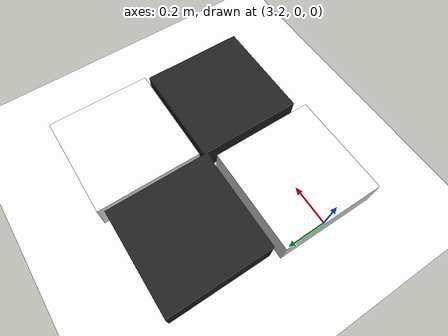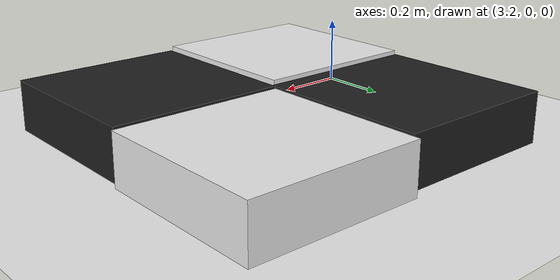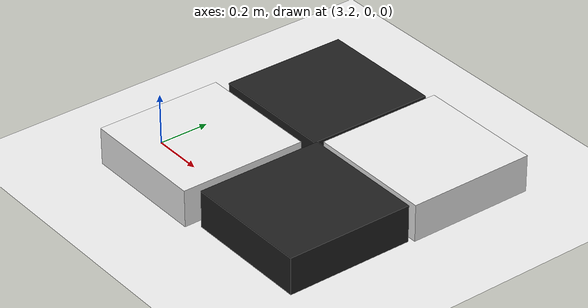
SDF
<sdf version="1.6">
 <world name="default">
  <light name="sun" type="directional">
   <pose>0 0 10 0 -0 0</pose>
   <diffuse>0.8 0.8 0.8 1</diffuse>
   <specular>0.1 0.1 0.1 1</specular>
   <attenuation>
    <range>1000</range>
    <constant>0.9</constant>
    <linear>0.01</linear>
    <quadratic>0.001</quadratic>
   </attenuation>
   <direction>-0.5 0.5 -1</direction>
  </light>
  <model name="ground_plane">
   <static>1</static>
   <link name="link">
    <collision name="collision">
     <geometry><plane><normal>0 0 1</normal><size>100 100</size></plane></geometry>
     <surface><friction><ode><mu>100</mu><mu2>50</mu2></ode></friction></surface>
    </collision>
    <visual name="visual">
     <cast_shadows>0</cast_shadows>
     <geometry><plane><normal>0 0 1</normal><size>100 100</size></plane></geometry>
     <material>
      <script><uri>file://media/materials/scripts/gazebo.material</uri><name>Gazebo/white</name></script>
     </material>
    </visual>
   </link>
  </model>
  <gravity>0 0 -9.8</gravity>
  <magnetic_field>6e-06 2.3e-05 -4.2e-05</magnetic_field>
  <atmosphere type="adiabatic"/>
  <physics name="default_physics" default="0" type="ode">
   <max_step_size>0.001</max_step_size>
   <real_time_factor>1</real_time_factor>
   <real_time_update_rate>1000</real_time_update_rate>
  </physics>
  <scene><ambient>0.4 0.4 0.4 1</ambient><background>0.7 0.7 0.7 1</background><shadows>1</shadows></scene>
  <spherical_coordinates>
   <surface_model>EARTH_WGS84</surface_model>
   <latitude_deg>0</latitude_deg>
   <longitude_deg>0</longitude_deg>
   <elevation>0</elevation>
   <heading_deg>0</heading_deg>
  </spherical_coordinates>
  <model name="unit_box_0">
   <pose>3.46565 0.541009 0.073426 0 0 -0.00434</pose>
   <link name="link">
    <inertial>
     <mass>1</mass>
     <inertia>
      <ixx>0.166667</ixx>
      <ixy>0</ixy>
      <ixz>0</ixz>
      <iyy>0.166667</iyy>
      <iyz>0</iyz>
      <izz>0.166667</izz>
     </inertia>
    </inertial>
    <collision name="collision"><geometry><box><size>0.5 0.5 0.146852</size></box></geometry></collision>
    <visual name="visual">
     <geometry><box><size>0.5 0.5 0.146852</size></box></geometry>
     <material>
      <script><name>Gazebo/Black</name><uri>file://media/materials/scripts/gazebo.material</uri></script>
     </material>
    </visual>
   </link>
  </model>
  <model name="unit_box_0_clone">
   <pose>3.9635 0.04945 0.073426 0 0 -0.004541</pose>
   <link name="link">
    <inertial>
     <mass>1</mass>
     <inertia>
      <ixx>0.166667</ixx>
      <ixy>0</ixy>
      <ixz>0</ixz>
      <iyy>0.166667</iyy>
      <iyz>0</iyz>
      <izz>0.166667</izz>
     </inertia>
    </inertial>
    <collision name="collision"><geometry><box><size>0.5 0.5 0.146852</size></box></geometry></collision>
    <visual name="visual">
     <geometry><box><size>0.5 0.5 0.146852</size></box></geometry>
     <material>
      <script><name>Gazebo/Black</name><uri>file://media/materials/scripts/gazebo.material</uri></script>
     </material>
    </visual>
   </link>
  </model>
  <model name="unit_box_0_clone_clone">
   <pose>3.97934 0.567152 0.073426 0 0 -0.004541</pose>
   <link name="link">
    <inertial>
     <mass>1</mass>
     <inertia>
      <ixx>0.166667</ixx>
      <ixy>0</ixy>
      <ixz>0</ixz>
      <iyy>0.166667</iyy>
      <iyz>0</iyz>
      <izz>0.166667</izz>
     </inertia>
    </inertial>
    <collision name="collision"><geometry><box><size>0.5 0.5 0.146852</size></box></geometry></collision>
    <visual name="visual">
     <geometry><box><size>0.5 0.5 0.146852</size></box></geometry>
     <material>
      <script><name>Gazebo/White</name><uri>file://media/materials/scripts/gazebo.material</uri></script>
     </material>
    </visual>
   </link>
  </model>
  <model name="unit_box_0_clone_clone_clone">
   <pose>3.42921 0.008109 0.073423 -1.2e-05 -0 -0.004541</pose>
   <link name="link">
    <inertial>
     <mass>1</mass>
     <inertia>
      <ixx>0.166667</ixx>
      <ixy>0</ixy>
      <ixz>0</ixz>
      <iyy>0.166667</iyy>
      <iyz>0</iyz>
      <izz>0.166667</izz>
     </inertia>
    </inertial>
    <collision name="collision"><geometry><box><size>0.5 0.5 0.146852</size></box></geometry></collision>
    <visual name="visual">
     <geometry><box><size>0.5 0.5 0.146852</size></box></geometry>
     <material>
      <script><name>Gazebo/White</name><uri>file://media/materials/scripts/gazebo.material</uri></script>
     </material>
    </visual>
   </link>
  </model>
 </world>
</sdf>
